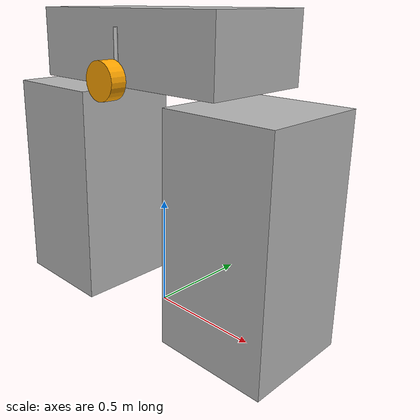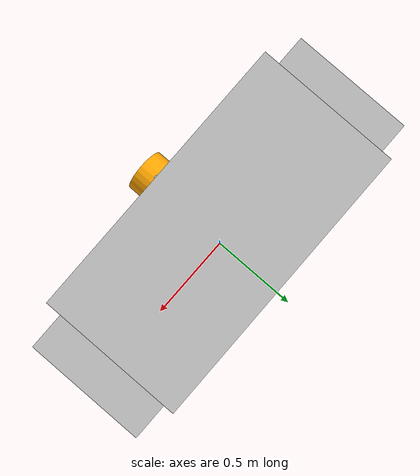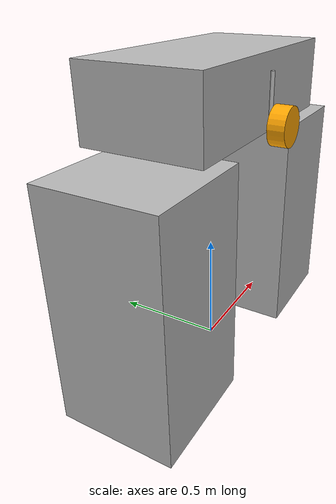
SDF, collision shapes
<?xml version="1.0" ?>
<!-- |    This document was autogenerated by xacro from /home/clynamen/teamdiana/gazebo-assets/models/definitions/rover_amalia_leg_test_bench/model.xacro | -->
<!-- |    EDITING THIS FILE BY HAND IS NOT RECOMMENDED                                 | -->
<sdf version="1.5">
  <model name="rover_amalia_leg_test_bench">
    <pose>0 0 0 0 0 0</pose>
    <link name="test_bench_base_1">
      <pose>-0.5 0 0.5 0 0 0</pose>
      <self_collide>true</self_collide>
      <inertial>
        <pose>0 0 0 0 0 0</pose>
        <mass>100</mass>
      </inertial>
      <visual name="test_bench_base_1_v">
        <pose>0 0 0 0 0 0</pose>
        <geometry>
          <box>
            <size>0.5 0.5 1</size>
          </box>
        </geometry>
      </visual>
      <collision name="test_bench_base_1_c">
        <pose>0 0 0 0 0 0</pose>
        <geometry>
          <box>
            <size>0.5 0.5 1</size>
          </box>
        </geometry>
        <max_contacts>10</max_contacts>
      </collision>
    </link>
    <link name="test_bench_base_2">
      <pose>0.5 0 0.5 0 0 0</pose>
      <self_collide>true</self_collide>
      <inertial>
        <pose>0 0 0 0 0 0</pose>
        <mass>100</mass>
      </inertial>
      <self_collide>true</self_collide>
      <visual name="test_bench_base_2_v">
        <pose>0 0 0 0 0 0</pose>
        <geometry>
          <box>
            <size>0.5 0.5 1</size>
          </box>
        </geometry>
      </visual>
      <collision name="test_bench_base_2_c">
        <pose>0 0 0 0 0 0</pose>
        <geometry>
          <box>
            <size>0.5 0.5 1</size>
          </box>
        </geometry>
        <max_contacts>10</max_contacts>
      </collision>
    </link>
    <link name="test_bench">
      <pose>0 0 1.20 0 0 0</pose>
      <inertial>
        <pose>0 0 0 0 0 0</pose>
        <mass>100</mass>
      </inertial>
      <visual name="test_bench_visual">
        <pose>0 0 0 0 0 0</pose>
        <geometry>
          <box>
            <size>1 0.5 0.3</size>
          </box>
        </geometry>
      </visual>
      <collision name="rover_amalia_chassis_body_collision">
        <pose>0 0 0 0 0 0</pose>
        <geometry>
          <box>
            <size>1 0.5 0.3</size>
          </box>
        </geometry>
        <max_contacts>10</max_contacts>
      </collision>
    </link>
    <link name="rover_amalia_leg_bar_f_l">
      <pose>-0.0 -0.26 1.18 0 0 0</pose>
      <inertial>
        <pose>0 0 0 0 0 0</pose>
        <mass>0.31</mass>
        <inertia>
          <ixx>0.00279048</ixx>
          <ixy>0</ixy>
          <ixz>-0.00003956</ixz>
          <iyy>0.00275062</iyy>
          <iyz>0</iyz>
          <izz>0.00008316</izz>
        </inertia>
      </inertial>
      <collision name="leg_bar_f_l_bar_collision">
        <geometry>
          <cylinder>
            <length>0.2</length>
            <radius>0.008</radius>
          </cylinder>
        </geometry>
        <max_contacts>10</max_contacts>
      </collision>
      <visual name="rover_amalia_leg_bar_f_l_bar_visual">
        <pose>0 0.018 0 0 0 -3.1415926</pose>
        <geometry>
          <mesh>
            <uri>model://rover_amalia_leg/meshes/leg.dae</uri>
          </mesh>
        </geometry>
      </visual>
    </link>
    <link name="rover_amalia_leg_wheel_f_l">
      <pose>-0.0 -0.313 1.08 0 0 0</pose>
      <inertial>
        <pose>0 0 0 0 0 0</pose>
        <mass>1.1</mass>
        <inertia>
          <ixx>0.00222713</ixx>
          <iyy>0.00353418</iyy>
          <izz>0.00222499</izz>
          <ixy>0</ixy>
          <ixz>0</ixz>
          <iyz>0</iyz>
        </inertia>
      </inertial>
      <collision name="rover_amalia_leg_wheel_f_l_collision">
        <pose>0 0 0 1.5707963 0 0</pose>
        <geometry>
          <cylinder>
            <length>0.07</length>
            <radius>0.08</radius>
          </cylinder>
        </geometry>
        <max_contacts>10</max_contacts>
      </collision>
      <visual name="rover_amalia_leg_wheel_f_l_motor_visual">
        <pose>0 0 0 0 0 -3.1415926</pose>
        <geometry>
          <mesh>
            <uri>model://rover_amalia_leg/meshes/motor.dae</uri>
          </mesh>
        </geometry>
        <material>
          <ambient>1 0.647 0 1</ambient>
          <diffuse>1 0.647 0 1</diffuse>
          <specular>1 1 1 0.6</specular>
        </material>
      </visual>
      <visual name="rover_amalia_leg_wheel_f_l_tire_visual">
        <pose>0 0 0 0 0 -3.1415926</pose>
        <geometry>
          <mesh>
            <uri>model://rover_amalia_leg/meshes/tire.dae</uri>
          </mesh>
        </geometry>
        <material>
          <ambient>0.1 0.1 0.1 1</ambient>
          <diffuse>0 0 0 1</diffuse>
          <specular>1 1 1 1</specular>
        </material>
      </visual>
      <self_collide>0</self_collide>
      <kinematic>0</kinematic>
      <gravity>1</gravity>
    </link>
    <joint name="rover_amalia_leg_shaft_f_l" type="revolute">
      <child>rover_amalia_leg_wheel_f_l</child>
      <parent>rover_amalia_leg_bar_f_l</parent>
      <axis>
        <xyz>0 1 0</xyz>
        <limit>
          <lower>-1e+16</lower>
          <upper>1e+16</upper>
          <effort>1000</effort>
          <velocity>1000</velocity>
        </limit>
        <use_parent_model_frame>1</use_parent_model_frame>
      </axis>
    </joint>
    <plugin filename="libgazebo_ros_joint_state_publisher.so" name="wheel_f_l">
      <robotNamespace/>
      <jointName>rover_amalia_leg_shaft_f_l</jointName>
      <updateRate>30</updateRate>
    </plugin>
    <joint name="test_bench_leg" type="revolute">
      <parent>test_bench</parent>
      <child>rover_amalia_leg_bar_f_l</child>
      <pose>0 0 0.1 0 0 0</pose>
      <axis>
        <xyz>0 1 0</xyz>
        <use_parent_model_frame>1</use_parent_model_frame>
      </axis>
      <physics>
        <ode>
          <provide_feedback>1</provide_feedback>
        </ode>
        <provide_feedback>1</provide_feedback>
      </physics>
    </joint>
    <plugin filename="libgazebo_ros_dynamixel_motor.so" name="dynamixel_motor">
      <joint>test_bench_leg</joint>
      <default_pos>1</default_pos>
      <default_torque_limit>100</default_torque_limit>
    </plugin>
  </model>
</sdf>
